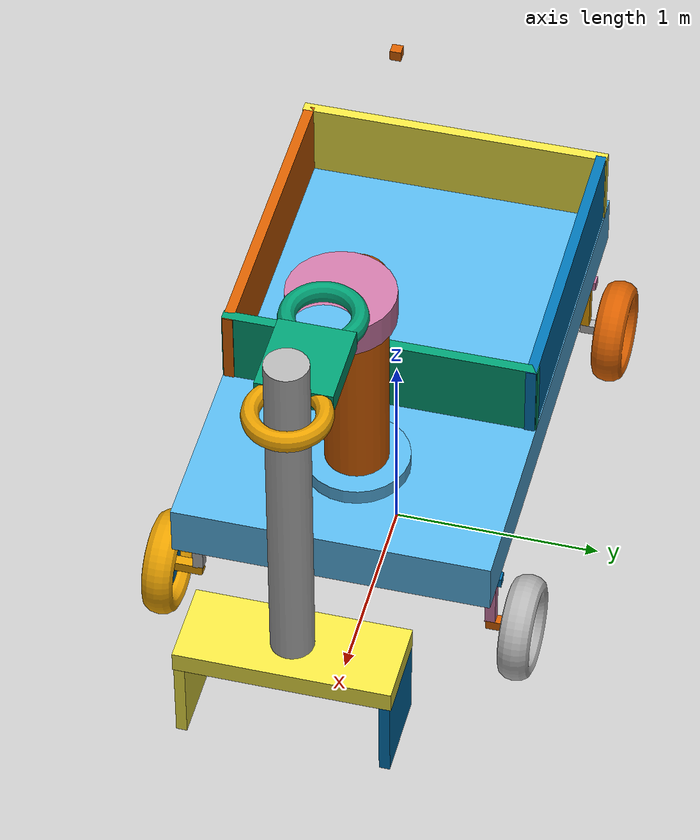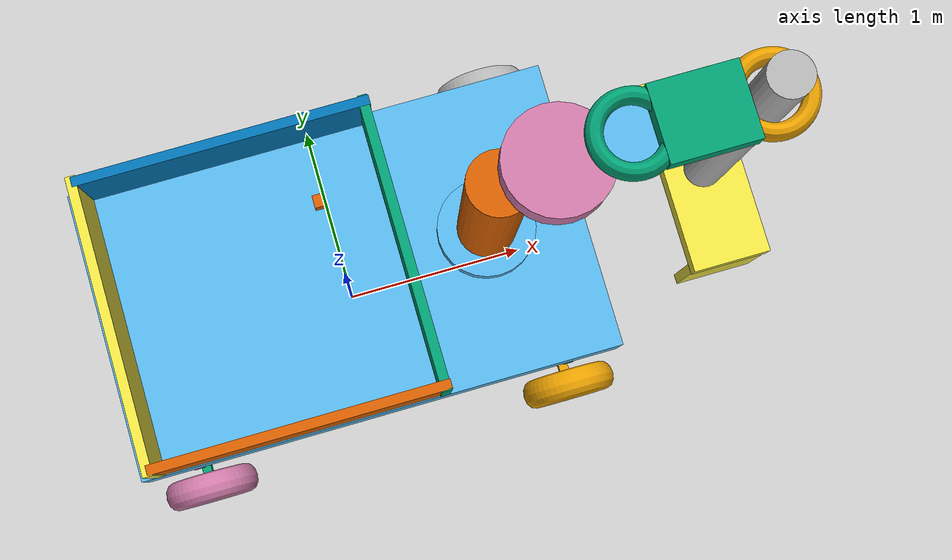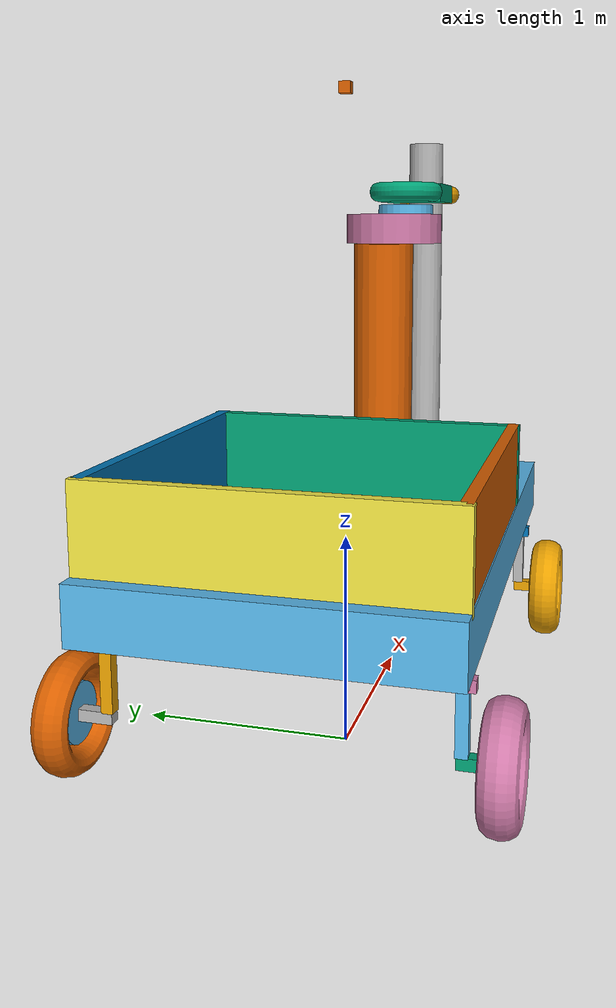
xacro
<?xml version="1.0"?>

<robot name="rover_description" xmlns:xacro="http:/wiki:ros.org/xacro">

  <!-- Includes -->
  <xacro:include filename="$(find rover_description)/urdf/base/robot_base.urdf.xacro"/>
  <xacro:include filename="$(find rover_description)/urdf/wheels/wheels.urdf.xacro"/>
  <xacro:include filename="$(find rover_description)/urdf/arm/arm.urdf.xacro"/>
  <xacro:include filename="$(find rover_description)/urdf/sensors/camera.urdf.xacro"/>
  <xacro:include filename="$(find rover_description)/urdf/sensors/imu_sensor.urdf.xacro"/>
  <!-- Properties -->
  <xacro:property name="PI" value="3.1415926535897931"/>
  <xacro:property name="wheel_offset_x" value="0.95"/>
  <xacro:property name="wheel_offset_y" value="0.95"/>
  <xacro:property name="wheel_offset_z" value="-0.38"/>
  <xacro:property name="arm_offset_x" value="0.0"/>
  <xacro:property name="arm_offset_y" value="0.82"/>
  <xacro:property name="arm_offset_z" value="0.69"/>

  <!-- Arguments -->
  <xacro:arg name="robot_ns" default=""/>
  <xacro:arg name="prefix" default=""/>

  <!-- Robot Parts -->

  <!-- Base -->

    <!-- base -->
    <xacro:robot_base/>

    <!-- wheels -->
    <xacro:wheels parent="base_link"/>

    <!-- arm -->
    <xacro:arm parent="base_link"/>

    <!-- sensors -->
    <xacro:camera parent="base_link"/>
    <xacro:sensor_imu parent="base_link"/>

    <!-- gazebo ROS control plugins -->
    <xacro:include filename="$(find rover_description)/urdf/ros2_control.urdf.xacro"/>
    <xacro:arg name="config_controllers" default="$(find rover_description)/config/rover_controllers.yaml"/>
    <xacro:arg name="update_rate" default="20"/>
    <xacro:ros2_control/>

</robot>

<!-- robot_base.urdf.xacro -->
<robot name="rover_description" xmlns:xacro="http:/wiki:ros.org/xacro">
  <xacro:macro name="robot_base">

   <link name="base_footprint">
    <visual name="Cube.000.001.002">
      <origin xyz="0 0 0" rpy="0 0 0" />
      <geometry>
        <sphere radius="0.001" />
      </geometry>
    </visual>
    <collision name="Cube.000.001.002.000">
      <origin xyz="0 0 0" rpy="0 0 0" />
      <geometry>
        <sphere radius="0.001" />
      </geometry>
    </collision>
   </link>
   <link name="base_link">
    <collision name="robot_base_collision">
      <origin rpy="0.00000 0.00000 0.00000" xyz="0.00000 0.00000 0.00000"/>
      <geometry>
        <box size="1.50000 2.50000 0.25000"/>
      </geometry>
    </collision>
    <inertial>
      <inertia ixx="3.15625" ixy="0.00000" ixz="0.00000" iyy="1.15625" iyz="0.00000" izz="4.25000"/>
      <origin rpy="0.00000 0.00000 0.00000" xyz="0.00000 0.00000 0.00000"/>
      <mass value="6.00000"/>
    </inertial>
    <visual name="robot_base">
      <origin rpy="0.00000 0.00000 0.00000" xyz="0.00000 0.00000 0.00000"/>
      <geometry>
        <box size="1.50000 2.50000 0.25000"/>
      </geometry>
    </visual>
  </link>
  <link name="truck_front_link">
    <collision name="truck_front_collision">
      <origin rpy="3.14159 0.00000 3.14159" xyz="0.00000 0.00000 0.00000"/>
      <geometry>
        <box size="1.50000 0.05000 0.40000"/>
      </geometry>
    </collision>
    <inertial>
      <inertia ixx="0.01354" ixy="0.00000" ixz="-0.00000" iyy="0.20083" iyz="0.00000" izz="0.18771"/>
      <origin rpy="0.00000 0.00000 0.00000" xyz="0.00000 0.00000 0.00000"/>
      <mass value="1.00000"/>
    </inertial>
    <visual name="truck_front">
      <origin rpy="3.14159 0.00000 3.14159" xyz="0.00000 0.00000 0.00000"/>
      <geometry>
        <box size="1.50000 0.05000 0.40000"/>
      </geometry>
    </visual>
  </link>
  <link name="trunk_back_link">
    <collision name="trunk_back_collision">
      <origin rpy="3.14159 0.00000 3.14159" xyz="0.00000 0.00000 0.00000"/>
      <geometry>
        <box size="1.50000 0.05000 0.40000"/>
      </geometry>
    </collision>
    <inertial>
      <inertia ixx="0.01354" ixy="0.00000" ixz="-0.00000" iyy="0.20083" iyz="0.00000" izz="0.18771"/>
      <origin rpy="0.00000 0.00000 0.00000" xyz="0.00000 0.00000 0.00000"/>
      <mass value="1.00000"/>
    </inertial>
    <visual name="trunk_back">
      <origin rpy="3.14159 0.00000 3.14159" xyz="0.00000 0.00000 0.00000"/>
      <geometry>
        <box size="1.50000 0.05000 0.40000"/>
      </geometry>
    </visual>
  </link>
  <link name="trunk_left_link">
    <collision name="trunk_left_collision">
      <origin rpy="3.14159 0.00000 3.14159" xyz="-0.00000 0.00000 0.00000"/>
      <geometry>
        <box size="0.05000 1.50000 0.40000"/>
      </geometry>
    </collision>
    <inertial>
      <inertia ixx="0.20083" ixy="0.00000" ixz="0.00000" iyy="0.01354" iyz="0.00000" izz="0.18771"/>
      <origin rpy="0.00000 0.00000 0.00000" xyz="0.00000 0.00000 0.00000"/>
      <mass value="1.00000"/>
    </inertial>
    <visual name="trunk_left">
      <origin rpy="3.14159 0.00000 3.14159" xyz="-0.00000 0.00000 0.00000"/>
      <geometry>
        <box size="0.05000 1.50000 0.40000"/>
      </geometry>
    </visual>
  </link>
  <link name="trunk_right_link">
    <collision name="trunk_right_collision">
      <origin rpy="3.14159 0.00000 3.14159" xyz="0.00000 0.00000 0.00000"/>
      <geometry>
        <box size="0.05000 1.50000 0.40000"/>
      </geometry>
    </collision>
    <inertial>
      <inertia ixx="0.20083" ixy="0.00000" ixz="0.00000" iyy="0.01354" iyz="0.00000" izz="0.18771"/>
      <origin rpy="0.00000 0.00000 0.00000" xyz="0.00000 0.00000 -0.00000"/>
      <mass value="1.00000"/>
    </inertial>
    <visual name="trunk_right">
      <origin rpy="3.14159 0.00000 3.14159" xyz="0.00000 0.00000 0.00000"/>
      <geometry>
        <box size="0.05000 1.50000 0.40000"/>
      </geometry>
    </visual>
  </link>
  <joint name="base_footprint_joint" type="fixed">
    <origin rpy="0.00000 0.00000 1.570795" xyz="0.00000 0.00000 1.00000"/>
    <parent link="base_footprint"/>
    <child link="base_link"/>
  </joint>
  <joint name="joint_back_truck_2_base" type="fixed">
    <origin rpy="3.14159 -0.00000 3.14159" xyz="0.00000 1.15000 0.30000"/>
    <parent link="base_link"/>
    <child link="trunk_back_link"/>
  </joint>
  <joint name="joint_front_truck_2_base" type="fixed">
    <origin rpy="3.14159 -0.00000 3.14159" xyz="0.00000 -0.32000 0.30000"/>
    <parent link="base_link"/>
    <child link="truck_front_link"/>
  </joint>
  <joint name="joint_left_truck_2_base" type="fixed">
    <origin rpy="3.14159 -0.00000 3.14159" xyz="0.72000 0.40000 0.30000"/>
    <parent link="base_link"/>
    <child link="trunk_left_link"/>
  </joint>
  <joint name="joint_right_truck_2_base" type="fixed">
    <origin rpy="3.14159 -0.00000 3.14159" xyz="-0.72000 0.40000 0.30000"/>
    <parent link="base_link"/>
    <child link="trunk_right_link"/>
  </joint>
  </xacro:macro>
</robot>

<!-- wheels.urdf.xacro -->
<robot name="rover_description" xmlns:xacro="http:/wiki:ros.org/xacro">
  <xacro:macro name="wheels" params="parent">
  <joint name="back_linkage_axis_left_link_joint" type="fixed">
    <origin rpy="0.00000 -1.57080 0.00000" xyz="0.70000 0.00000 -0.13000"/>
    <parent link="back_axis_link"/>
    <child link="back_linkage_axis_left_link"/>
  </joint>
  <joint name="back_linkage_axis_right_link_joint" type="fixed">
    <origin rpy="-0.00000 1.57080 0.00000" xyz="-0.70000 0.00000 -0.13000"/>
    <parent link="back_axis_link"/>
    <child link="back_linkage_axis_right_link"/>
  </joint>

  <joint name="joint_back_right_2_linkage_axis" type="fixed">
    <origin rpy="0.00000 -1.57080 0.00000" xyz="0.17000 0.00000 -0.08000"/>
    <parent link="back_linkage_axis_right_link"/>
    <child link="back_right_axis_link"/>
  </joint>

  <joint name="joint_central_2_back_axis" type="fixed">
    <origin rpy="0.00000 0.00000 0.00000" xyz="0.00000 1.00000 -0.05000"/>
    <parent link="central_axis_link"/>
    <child link="back_axis_link"/>
  </joint>
  <joint name="joint_central_2_front_axis" type="fixed">
    <origin rpy="0.00000 0.00000 0.00000" xyz="0.00000 -1.00000 -0.05000"/>
    <parent link="central_axis_link"/>
    <child link="front_axis_link"/>
  </joint>
  <joint name="joint_centralaxis_2_base" type="fixed">
    <origin rpy="0.00000 0.00000 0.00000" xyz="0.00000 0.00000 -0.15000"/>
    <parent link="${parent}"/>
    <child link="central_axis_link"/>
  </joint>
  <joint name="joint_front_right_axis_2_linkage" type="fixed">
    <origin rpy="0.00000 -1.57080 0.00000" xyz="0.17000 0.00000 -0.08000"/>
    <parent link="front_linkage_axis_right_link"/>
    <child link="front_right_axis_link"/>
  </joint>

  <joint name="joint_left_2_linkage_axis" type="fixed">
    <origin rpy="-0.00000 1.57080 0.00000" xyz="-0.17000 0.00000 -0.08000"/>
    <parent link="back_linkage_axis_left_link"/>
    <child link="back_left_axis_link"/>
  </joint>
  <joint name="joint_left_axis_2_linkage_front" type="fixed">
    <origin rpy="-0.00000 1.57080 0.00000" xyz="-0.17000 0.00000 -0.08000"/>
    <parent link="front_linkage_axis_left_link"/>
    <child link="front_left_axis_link"/>
  </joint>

  <joint name="joint_linkage_2_front__right_axis" type="fixed">
    <origin rpy="-0.00000 1.57080 0.00000" xyz="-0.70000 0.00000 -0.13000"/>
    <parent link="front_axis_link"/>
    <child link="front_linkage_axis_right_link"/>
  </joint>
  <joint name="joint_linkage_2_front_axis_left" type="fixed">
    <origin rpy="0.00000 -1.57080 0.00000" xyz="0.70000 0.00000 -0.13000"/>
    <parent link="front_axis_link"/>
    <child link="front_linkage_axis_left_link"/>
  </joint>

  <joint name="joint_wheel_2_rim_back_left" type="fixed">
    <origin rpy="3.14159 1.57080 3.14159" xyz="-0.00000 0.00000 0.00000"/>
    <parent link="rim_back_left_link"/>
    <child link="wheel_back_left_link"/>
  </joint>
  <joint name="joint_wheel_2_rim_back_right" type="fixed">
    <origin rpy="0.00000 -1.57080 0.00000" xyz="0.00000 0.00000 0.00000"/>
    <parent link="rim_back_right_link"/>
    <child link="wheel_back_right_link"/>
  </joint>
  <joint name="joint_wheel_2_rim_fornt_left" type="fixed">
    <origin rpy="3.14159 1.57080 3.14159" xyz="0.00000 0.00000 -0.00000"/>
    <parent link="rim_front_left_link"/>
    <child link="wheel_front_left_link"/>
  </joint>
  <joint name="joint_wheel_2_rim_front_right" type="fixed">
    <origin rpy="0.00000 -1.57080 0.00000" xyz="0.00000 0.00000 0.00000"/>
    <parent link="rim_front_right_link"/>
    <child link="wheel_front_right_link"/>
  </joint>
  <joint name="joint_wheel_back_left" type="continuous">
    <limit lower="0" upper="0" effort="0.00000" velocity="0.00000"/>
    <origin rpy="-0.00000 1.57080 0.00000" xyz="0.07000 0.00000 -0.00000"/>
    <parent link="back_left_axis_link"/>
    <child link="rim_back_left_link"/>
    <axis xyz="0.00000 0.00000 1.00000"/>
  </joint>
  <joint name="joint_wheel_banck_right" type="continuous">
    <limit lower="0" upper="0" effort="0.00000" velocity="0.00000"/>
    <origin rpy="0.00000 -1.57080 0.00000" xyz="-0.07000 0.00000 -0.00000"/>
    <parent link="back_right_axis_link"/>
    <child link="rim_back_right_link"/>
    <axis xyz="0.00000 0.00000 1.00000"/>
  </joint>
  <joint name="joint_wheel_front_left" type="continuous">
    <limit lower="0" upper="0" effort="0.00000" velocity="0.00000"/>
    <origin rpy="-0.00000 1.57080 0.00000" xyz="0.07000 0.00000 0.00000"/>
    <parent link="front_left_axis_link"/>
    <child link="rim_front_left_link"/>
    <axis xyz="0.00000 0.00000 1.00000"/>
  </joint>
  <joint name="joint_wheel_front_right" type="continuous">
    <limit lower="0" upper="0" effort="0.00000" velocity="0.00000"/>
    <origin rpy="0.00000 -1.57080 0.00000" xyz="-0.07000 0.00000 -0.00000"/>
    <parent link="front_right_axis_link"/>
    <child link="rim_front_right_link"/>
    <axis xyz="0.00000 0.00000 1.00000"/>
  </joint>

  <link name="back_axis_link">
    <collision name="back_axis_collision">
      <origin rpy="0.00000 0.00000 0.00000" xyz="0.00000 0.00000 0.00000"/>
      <geometry>
        <box size="1.50000 0.05000 0.05000"/>
      </geometry>
    </collision>
    <inertial>
      <inertia ixx="0.00033" ixy="0.00000" ixz="0.00000" iyy="0.15017" iyz="0.00000" izz="0.15017"/>
      <origin rpy="0.00000 0.00000 0.00000" xyz="0.00000 0.00000 0.00000"/>
      <mass value="0.80000"/>
    </inertial>
    <visual name="back_axis">
      <origin rpy="0.00000 0.00000 0.00000" xyz="0.00000 0.00000 0.00000"/>
      <geometry>
        <box size="1.50000 0.05000 0.05000"/>
      </geometry>
    </visual>
  </link>
  <link name="back_left_axis_link">
    <collision name="back_left_axis_collision">
      <origin rpy="0.00000 0.00000 0.00000" xyz="0.00000 0.00000 -0.00000"/>
      <geometry>
        <box size="0.20000 0.05000 0.05000"/>
      </geometry>
    </collision>
    <inertial>
      <inertia ixx="0.00021" ixy="0.00000" ixz="0.00000" iyy="0.00177" iyz="0.00000" izz="0.00177"/>
      <origin rpy="0.00000 0.00000 0.00000" xyz="0.00000 0.00000 -0.00000"/>
      <mass value="0.50000"/>
    </inertial>
    <visual name="back_left_axis">
      <origin rpy="0.00000 0.00000 0.00000" xyz="0.00000 0.00000 -0.00000"/>
      <geometry>
        <box size="0.20000 0.05000 0.05000"/>
      </geometry>
    </visual>
  </link>
  <link name="back_linkage_axis_left_link">
    <collision name="back_linkage_axis_left_collision">
      <origin rpy="-0.00000 1.57080 0.00000" xyz="0.00000 0.00000 -0.00000"/>
      <geometry>
        <box size="0.05000 0.05000 0.30000"/>
      </geometry>
    </collision>
    <inertial>
      <inertia ixx="0.00385" ixy="0.00000" ixz="0.00000" iyy="0.00385" iyz="0.00000" izz="0.00021"/>
      <origin rpy="0.00000 0.00000 0.00000" xyz="0.00000 0.00000 -0.00000"/>
      <mass value="0.50000"/>
    </inertial>
    <visual name="back_linkage_axis_left">
      <origin rpy="-0.00000 1.57080 0.00000" xyz="0.00000 0.00000 0.00000"/>
      <geometry>
        <box size="0.05000 0.05000 0.30000"/>
      </geometry>
    </visual>
  </link>
  <link name="back_linkage_axis_right_link">
    <collision name="back_linkage_axis_right_collision">
      <origin rpy="0.00000 -1.57080 0.00000" xyz="-0.00000 0.00000 -0.00000"/>
      <geometry>
        <box size="0.05000 0.05000 0.30000"/>
      </geometry>
    </collision>
    <inertial>
      <inertia ixx="0.00385" ixy="0.00000" ixz="-0.00000" iyy="0.00385" iyz="0.00000" izz="0.00021"/>
      <origin rpy="0.00000 0.00000 0.00000" xyz="-0.00000 0.00000 -0.00000"/>
      <mass value="0.50000"/>
    </inertial>
    <visual name="back_linkage_axis_right">
      <origin rpy="0.00000 -1.57080 0.00000" xyz="0.00000 0.00000 0.00000"/>
      <geometry>
        <box size="0.05000 0.05000 0.30000"/>
      </geometry>
    </visual>
  </link>
  <link name="back_right_axis_link">
    <collision name="back_right_axis_collision">
      <origin rpy="0.00000 0.00000 0.00000" xyz="-0.00000 0.00000 -0.00000"/>
      <geometry>
        <box size="0.20000 0.05000 0.05000"/>
      </geometry>
    </collision>
    <inertial>
      <inertia ixx="0.00021" ixy="0.00000" ixz="0.00000" iyy="0.00177" iyz="0.00000" izz="0.00177"/>
      <origin rpy="0.00000 0.00000 0.00000" xyz="-0.00000 0.00000 -0.00000"/>
      <mass value="0.50000"/>
    </inertial>
    <visual name="back_right_axis">
      <origin rpy="0.00000 0.00000 0.00000" xyz="0.00000 0.00000 -0.00000"/>
      <geometry>
        <box size="0.20000 0.05000 0.05000"/>
      </geometry>
    </visual>
  </link>
  <link name="central_axis_link">
    <collision name="central_axis_collision">
      <origin rpy="0.00000 0.00000 0.00000" xyz="0.00000 0.00000 0.00000"/>
      <geometry>
        <box size="0.10000 2.05000 0.10000"/>
      </geometry>
    </collision>
    <inertial>
      <inertia ixx="0.35104" ixy="0.00000" ixz="0.00000" iyy="0.00167" iyz="0.00000" izz="0.35104"/>
      <origin rpy="0.00000 0.00000 0.00000" xyz="0.00000 0.00000 0.00000"/>
      <mass value="1.00000"/>
    </inertial>
    <visual name="central_axis">
      <origin rpy="0.00000 0.00000 0.00000" xyz="0.00000 0.00000 0.00000"/>
      <geometry>
        <box size="0.10000 2.05000 0.10000"/>
      </geometry>
    </visual>
  </link>

  <link name="front_axis_link">
    <collision name="front_axis_collision">
      <origin rpy="0.00000 0.00000 0.00000" xyz="0.00000 0.00000 0.00000"/>
      <geometry>
        <box size="1.50000 0.05000 0.05000"/>
      </geometry>
    </collision>
    <inertial>
      <inertia ixx="0.00033" ixy="0.00000" ixz="0.00000" iyy="0.15017" iyz="0.00000" izz="0.15017"/>
      <origin rpy="0.00000 0.00000 0.00000" xyz="0.00000 0.00000 0.00000"/>
      <mass value="0.80000"/>
    </inertial>
    <visual name="front_axis">
      <origin rpy="0.00000 0.00000 0.00000" xyz="0.00000 0.00000 0.00000"/>
      <geometry>
        <box size="1.50000 0.05000 0.05000"/>
      </geometry>
    </visual>
  </link>
  <link name="front_left_axis_link">
    <collision name="front_left_axis_collision">
      <origin rpy="0.00000 0.00000 0.00000" xyz="0.00000 0.00000 0.00000"/>
      <geometry>
        <box size="0.20000 0.05000 0.05000"/>
      </geometry>
    </collision>
    <inertial>
      <inertia ixx="0.00021" ixy="0.00000" ixz="0.00000" iyy="0.00177" iyz="0.00000" izz="0.00177"/>
      <origin rpy="0.00000 0.00000 0.00000" xyz="-0.00000 0.00000 0.00000"/>
      <mass value="0.50000"/>
    </inertial>
    <visual name="front_left_axis">
      <origin rpy="0.00000 0.00000 0.00000" xyz="0.00000 0.00000 0.00000"/>
      <geometry>
        <box size="0.20000 0.05000 0.05000"/>
      </geometry>
    </visual>
  </link>
  <link name="front_linkage_axis_left_link">
    <collision name="front_linkage_axis_left_collision">
      <origin rpy="-0.00000 1.57080 0.00000" xyz="-0.00000 0.00000 0.00000"/>
      <geometry>
        <box size="0.05000 0.05000 0.30000"/>
      </geometry>
    </collision>
    <inertial>
      <inertia ixx="0.00385" ixy="0.00000" ixz="0.00000" iyy="0.00385" iyz="0.00000" izz="0.00021"/>
      <origin rpy="0.00000 0.00000 0.00000" xyz="-0.00000 0.00000 0.00000"/>
      <mass value="0.50000"/>
    </inertial>
    <visual name="front_linkage_axis_left">
      <origin rpy="-0.00000 1.57080 0.00000" xyz="-0.00000 0.00000 0.00000"/>
      <geometry>
        <box size="0.05000 0.05000 0.30000"/>
      </geometry>
    </visual>
  </link>
  <link name="front_linkage_axis_right_link">
    <collision name="front_linkage_axis_right_collision">
      <origin rpy="0.00000 -1.57080 0.00000" xyz="-0.00000 0.00000 -0.00000"/>
      <geometry>
        <box size="0.05000 0.05000 0.30000"/>
      </geometry>
    </collision>
    <inertial>
      <inertia ixx="0.00385" ixy="0.00000" ixz="-0.00000" iyy="0.00385" iyz="0.00000" izz="0.00021"/>
      <origin rpy="0.00000 0.00000 0.00000" xyz="-0.00000 0.00000 -0.00000"/>
      <mass value="0.50000"/>
    </inertial>
    <visual name="front_linkage_axis_right">
      <origin rpy="0.00000 -1.57080 0.00000" xyz="0.00000 0.00000 0.00000"/>
      <geometry>
        <box size="0.05000 0.05000 0.30000"/>
      </geometry>
    </visual>
  </link>
  <link name="front_right_axis_link">
    <collision name="front_right_axis_collision">
      <origin rpy="0.00000 0.00000 0.00000" xyz="-0.00000 0.00000 -0.00000"/>
      <geometry>
        <box size="0.20000 0.05000 0.05000"/>
      </geometry>
    </collision>
    <inertial>
      <inertia ixx="0.00021" ixy="0.00000" ixz="0.00000" iyy="0.00177" iyz="0.00000" izz="0.00177"/>
      <origin rpy="0.00000 0.00000 0.00000" xyz="-0.00000 0.00000 -0.00000"/>
      <mass value="0.50000"/>
    </inertial>
    <visual name="front_right_axis">
      <origin rpy="0.00000 0.00000 0.00000" xyz="0.00000 0.00000 -0.00000"/>
      <geometry>
        <box size="0.20000 0.05000 0.05000"/>
      </geometry>
    </visual>
  </link>

  <link name="rim_back_left_link">
    <collision name="rim_back_left_collision">
      <origin rpy="0.00000 0.00000 0.00000" xyz="0.00000 0.00000 0.00000"/>
      <geometry>
        <cylinder radius="0.12500" length="0.05000"/>
      </geometry>
    </collision>
    <inertial>
      <inertia ixx="0.00781" ixy="0.00000" ixz="-0.00000" iyy="0.00411" iyz="0.00000" izz="0.00411"/>
      <origin rpy="0.00000 0.00000 0.00000" xyz="0.00000 0.00000 0.00000"/>
      <mass value="1.00000"/>
    </inertial>
    <visual name="rim_back_left">
      <origin rpy="0.00000 0.00000 0.00000" xyz="-0.00000 0.00000 0.00000"/>
      <geometry>
        <cylinder radius="0.12500" length="0.05000"/>
      </geometry>
    </visual>
  </link>
  <link name="rim_back_right_link">
    <collision name="rim_back_right_collision">
      <origin rpy="3.14159 -0.00000 3.14159" xyz="0.00000 0.00000 0.00000"/>
      <geometry>
        <cylinder radius="0.12500" length="0.05000"/>
      </geometry>
    </collision>
    <inertial>
      <inertia ixx="0.01125" ixy="0.00000" ixz="0.00000" iyy="0.00583" iyz="0.00000" izz="0.00583"/>
      <origin rpy="0.00000 0.00000 0.00000" xyz="0.00000 0.00000 0.00000"/>
      <mass value="1.00000"/>
    </inertial>
    <visual name="rim_back_right">
      <origin rpy="3.14159 0.00000 3.14159" xyz="0.00000 0.00000 0.00000"/>
      <geometry>
        <cylinder radius="0.15000" length="0.05000"/>
      </geometry>
    </visual>
  </link>
  <link name="rim_front_left_link">
    <collision name="rim_front_left_collision">
      <origin rpy="0.00000 0.00000 0.00000" xyz="0.00000 0.00000 -0.00000"/>
      <geometry>
        <cylinder radius="0.12500" length="0.05000"/>
      </geometry>
    </collision>
    <inertial>
      <inertia ixx="0.00781" ixy="0.00000" ixz="-0.00000" iyy="0.00411" iyz="0.00000" izz="0.00411"/>
      <origin rpy="0.00000 0.00000 0.00000" xyz="0.00000 0.00000 0.00000"/>
      <mass value="1.00000"/>
    </inertial>
    <visual name="rim_front_left">
      <origin rpy="0.00000 0.00000 0.00000" xyz="0.00000 0.00000 -0.00000"/>
      <geometry>
        <cylinder radius="0.12500" length="0.05000"/>
      </geometry>
    </visual>
  </link>
  <link name="rim_front_right_link">
    <collision name="rim_front_right_collision">
      <origin rpy="3.14159 -0.00000 3.14159" xyz="0.00000 0.00000 0.00000"/>
      <geometry>
        <cylinder radius="0.12500" length="0.05000"/>
      </geometry>
    </collision>
    <inertial>
      <inertia ixx="0.00781" ixy="0.00000" ixz="0.00000" iyy="0.00411" iyz="0.00000" izz="0.00411"/>
      <origin rpy="0.00000 0.00000 0.00000" xyz="0.00000 0.00000 0.00000"/>
      <mass value="1.00000"/>
    </inertial>
    <visual name="rim_front_right">
      <origin rpy="3.14159 0.00000 3.14159" xyz="0.00000 0.00000 0.00000"/>
      <geometry>
        <cylinder radius="0.12500" length="0.05000"/>
      </geometry>
    </visual>
  </link>

  <link name="wheel_back_left_link">
    <collision name="wheel_back_left_collision">
      <origin rpy="0.00000 1.57080 -0.00000" xyz="0.00000 0.00000 0.00000"/>
      <geometry>
        <mesh filename="file://$(find rover_description)/meshes/dae/Torus.003.dae" scale="0.20000 0.20000 0.30000"/>
      </geometry>
    </collision>
    <inertial>
      <inertia ixx="0.02932" ixy="0.00000" ixz="0.00000" iyy="0.01577" iyz="-0.00000" izz="0.01577"/>
      <origin rpy="0.00000 0.00000 0.00000" xyz="0.00000 -0.00000 0.00000"/>
      <mass value="1.00000"/>
    </inertial>
    <visual name="wheel_back_left">
      <origin rpy="3.14159 -1.57080 3.14159" xyz="0.00000 0.00000 0.00000"/>
      <geometry>
        <mesh filename="file://$(find rover_description)/meshes/dae/Torus.003.dae" scale="0.20000 0.20000 0.30000"/>
      </geometry>
    </visual>
  </link>
  <link name="wheel_back_right_link">
    <collision name="wheel_back_right_collision">
      <origin rpy="0.00000 1.57080 -0.00000" xyz="-0.00000 0.00000 -0.00000"/>
      <geometry>
        <mesh filename="file://$(find rover_description)/meshes/dae/Torus.001.dae" scale="0.20000 0.20000 0.30000"/>
      </geometry>
    </collision>
    <inertial>
      <inertia ixx="0.02932" ixy="0.00000" ixz="0.00000" iyy="0.01577" iyz="-0.00000" izz="0.01577"/>
      <origin rpy="0.00000 0.00000 0.00000" xyz="-0.00000 -0.00000 0.00000"/>
      <mass value="1.00000"/>
    </inertial>
    <visual name="wheel_back_right">
      <origin rpy="3.14159 -1.57080 3.14159" xyz="-0.00000 0.00000 -0.00000"/>
      <geometry>
        <mesh filename="file://$(find rover_description)/meshes/dae/Torus.001.dae" scale="0.20000 0.20000 0.30000"/>
      </geometry>
    </visual>
  </link>
  <link name="wheel_front_left_link">
    <collision name="wheel_front_left_collision">
      <origin rpy="0.00000 1.57080 -0.00000" xyz="-0.00000 0.00000 -0.00000"/>
      <geometry>
        <mesh filename="file://$(find rover_description)/meshes/dae/Torus.002.dae" scale="0.20000 0.20000 0.30000"/>
      </geometry>
    </collision>
    <inertial>
      <inertia ixx="0.02932" ixy="0.00000" ixz="0.00000" iyy="0.01577" iyz="-0.00000" izz="0.01577"/>
      <origin rpy="0.00000 0.00000 0.00000" xyz="-0.00000 0.00000 -0.00000"/>
      <mass value="1.00000"/>
    </inertial>
    <visual name="wheel_front_left">
      <origin rpy="3.14159 -1.57080 3.14159" xyz="-0.00000 0.00000 -0.00000"/>
      <geometry>
        <mesh filename="file://$(find rover_description)/meshes/dae/Torus.002.dae" scale="0.20000 0.20000 0.30000"/>
      </geometry>
    </visual>
  </link>
  <link name="wheel_front_right_link">
    <collision name="wheel_front_right_collision">
      <origin rpy="0.00000 1.57080 -0.00000" xyz="-0.00000 0.00000 -0.00000"/>
      <geometry>
        <mesh filename="file://$(find rover_description)/meshes/dae/Torus.dae" scale="0.20000 0.20000 0.30000"/>
      </geometry>
    </collision>
    <inertial>
      <inertia ixx="0.02932" ixy="0.00000" ixz="0.00000" iyy="0.01577" iyz="-0.00000" izz="0.01577"/>
      <origin rpy="0.00000 0.00000 0.00000" xyz="-0.00000 0.00000 0.00000"/>
      <mass value="1.00000"/>
    </inertial>
    <visual name="wheel_front_right">
      <origin rpy="3.14159 -1.57080 3.14159" xyz="-0.00000 0.00000 -0.00000"/>
      <geometry>
        <mesh filename="file://$(find rover_description)/meshes/dae/Torus.dae" scale="0.20000 0.20000 0.30000"/>
      </geometry>
    </visual>
  </link>
  </xacro:macro>

</robot>

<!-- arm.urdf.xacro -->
<robot name="rover_description" xmlns:xacro="http:/wiki:ros.org/xacro">
  <xacro:macro name="arm" params="parent">
  <joint name="arm_base_link_joint" type="fixed">
    <origin rpy="0.00000 0.00000 0.00000" xyz="0.00000 -0.75000 0.15000"/>
    <parent link="${parent}"/>
    <child link="arm_base_link"/>
  </joint>

  <joint name="central_link3_link_joint" type="fixed">
    <origin rpy="0.00000 0.00000 0.00000" xyz="0.00000 -0.30000 0.00000"/>
    <parent link="linkage_link3_link"/>
    <child link="central_link3_link"/>
  </joint>
  <joint name="joint_1_arm" type="continuous">
    <limit lower="0" upper="0" effort="0.00000" velocity="0.00000"/>
    <origin rpy="0.00000 0.00000 0.00000" xyz="0.00000 0.00000 0.55000"/>
    <parent link="link1_arm_link"/>
    <child link="link2_arm.001_link"/>
    <axis xyz="0.00000 0.00000 1.00000"/>
  </joint>
  <joint name="joint_arm_2" type="continuous">
    <limit lower="0" upper="0" effort="0.00000" velocity="0.00000"/>
    <origin rpy="0.00000 0.00000 0.00000" xyz="0.00000 0.00000 0.10000"/>
    <parent link="linkage_arm2_arm3_link"/>
    <child link="linkage_link3_link"/>
    <axis xyz="0.00000 0.00000 1.00000"/>
  </joint>
  <joint name="joint_linkage_2_link2" type="fixed">
    <origin rpy="0.00000 0.00000 0.00000" xyz="0.00000 -0.55000 0.10000"/>
    <parent link="link2_arm.001_link"/>
    <child link="linkage_arm2_arm3_link"/>
  </joint>
  <joint name="joint_arm_4_prismatic" type="prismatic">
    <limit lower="-3.14000" upper="3.14000" effort="0.00000" velocity="0.00000"/>
    <origin rpy="0.00000 0.00000 0.00000" xyz="0.00000 0.00000 -0.60000"/>
    <parent link="link3_final_link"/>
    <child link="link3_arm_link"/>
    <axis xyz="0.00000 0.00000 1.00000"/>
  </joint>

   <joint name="joint_gripper_left" type="prismatic">
    <limit lower="-3.14000" upper="3.14000" effort="0.00000" velocity="0.00000"/>
    <origin rpy="0.00000 1.57080 0.00000" xyz="-0.47000 0.00000 0.25000"/>
    <parent link="gripper_base_link"/>
    <child link="left_gripper_link"/>
    <axis xyz="0.00000 0.00000 1.00000"/>
  </joint>
  <joint name="joint_gripper_right" type="prismatic">
    <limit lower="-3.14000" upper="3.14000" effort="0.00000" velocity="0.00000"/>
    <origin rpy="0.00000 -1.57080 0.00000" xyz="0.47000 0.00000 0.25000"/>
    <parent link="gripper_base_link"/>
    <child link="right_gripper_link"/>
    <axis xyz="0.00000 0.00000 1.00000"/>
  </joint>
  <joint name="joint_gripper_rotacion" type="continuous">
    <limit lower="0" upper="0" effort="0.00000" velocity="0.00000"/>
    <origin rpy="3.14159 -0.00000 3.14159" xyz="0.00000 -0.00000 -0.90000"/>
    <parent link="link3_arm_link"/>
    <child link="gripper_base_link"/>
    <axis xyz="0.00000 0.00000 1.00000"/>
  </joint>
  <joint name="joint_link_1_2_base_arm" type="fixed">
    <origin rpy="0.00000 0.00000 0.00000" xyz="0.00000 0.00000 0.70000"/>
    <parent link="arm_base_link"/>
    <child link="link1_arm_link"/>
  </joint>

  <joint name="link3_final_link_joint" type="fixed">
    <origin rpy="0.00000 0.00000 0.00000" xyz="0.00000 -0.30000 -0.00000"/>
    <parent link="central_link3_link"/>
    <child link="link3_final_link"/>
  </joint>
  <link name="arm_base_link">
    <collision name="arm_base_collision">
      <origin rpy="0.00000 0.00000 0.00000" xyz="0.00000 -0.00000 0.00000"/>
      <geometry>
        <cylinder radius="0.25000" length="0.10000"/>
      </geometry>
    </collision>
    <inertial>
      <inertia ixx="0.02469" ixy="0.00000" ixz="0.00000" iyy="0.02469" iyz="0.00000" izz="0.04688"/>
      <origin rpy="0.00000 0.00000 0.00000" xyz="0.00000 -0.00000 0.00000"/>
      <mass value="1.50000"/>
    </inertial>
    <visual name="arm_base">
      <origin rpy="0.00000 0.00000 0.00000" xyz="0.00000 0.00000 0.00000"/>
      <geometry>
        <cylinder radius="0.25000" length="0.10000"/>
      </geometry>
    </visual>
  </link>

  <link name="central_link3_link">
    <collision name="central_link3_collision">
      <origin rpy="0.00000 0.00000 0.00000" xyz="0.00000 -0.00000 -0.00000"/>
      <geometry>
        <box size="0.20000 0.20000 0.10000"/>
      </geometry>
    </collision>
    <inertial>
      <inertia ixx="0.00425" ixy="0.00000" ixz="0.00000" iyy="0.00331" iyz="0.00000" izz="0.00706"/>
      <origin rpy="0.00000 0.00000 0.00000" xyz="0.00000 -0.00000 -0.00000"/>
      <mass value="0.30000"/>
    </inertial>
    <visual name="central_link3">
      <origin rpy="0.00000 0.00000 0.00000" xyz="0.00000 0.00000 -0.00000"/>
      <geometry>
        <box size="0.35000 0.40000 0.10000"/>
      </geometry>
    </visual>
  </link>

  <link name="gripper_base_link">
    <collision name="gripper_base_collision">
      <origin rpy="3.14159 0.00000 3.14159" xyz="-0.00000 0.00000 0.00000"/>
      <geometry>
        <box size="1.00000 0.40000 0.10000"/>
      </geometry>
    </collision>
    <inertial>
      <inertia ixx="0.00425" ixy="0.00000" ixz="-0.00000" iyy="0.02525" iyz="0.00000" izz="0.02900"/>
      <origin rpy="0.00000 0.00000 0.00000" xyz="-0.00000 0.00000 0.00000"/>
      <mass value="0.30000"/>
    </inertial>
    <visual name="gripper_base">
      <origin rpy="3.14159 0.00000 3.14159" xyz="-0.00000 0.00000 0.00000"/>
      <geometry>
        <box size="1.00000 0.40000 0.10000"/>
      </geometry>
    </visual>
  </link>
  <link name="left_gripper_link">
    <collision name="left_gripper_collision">
      <origin rpy="-0.00000 1.57080 0.00000" xyz="-0.00000 0.00000 0.00000"/>
      <geometry>
        <box size="0.05000 0.40000 0.40000"/>
      </geometry>
    </collision>
    <inertial>
      <inertia ixx="0.00800" ixy="0.00000" ixz="0.00000" iyy="0.00406" iyz="0.00000" izz="0.00406"/>
      <origin rpy="0.00000 0.00000 0.00000" xyz="-0.00000 0.00000 0.00000"/>
      <mass value="0.30000"/>
    </inertial>
    <visual name="left_gripper">
      <origin rpy="-0.00000 1.57080 0.00000" xyz="-0.00000 0.00000 0.00000"/>
      <geometry>
        <box size="0.05000 0.40000 0.40000"/>
      </geometry>
    </visual>
  </link>

  <link name="link1_arm_link">
    <collision name="link1_arm_collision">
      <origin rpy="0.00000 0.00000 0.00000" xyz="0.00000 -0.00000 -0.10000"/>
      <geometry>
        <cylinder radius="0.15000" length="1.15000"/>
      </geometry>
    </collision>
    <inertial>
      <inertia ixx="0.17375" ixy="0.00000" ixz="0.00000" iyy="0.17375" iyz="0.00000" izz="0.01688"/>
      <origin rpy="0.00000 0.00000 0.00000" xyz="0.00000 -0.00000 -0.10000"/>
      <mass value="1.50000"/>
    </inertial>
    <visual name="link1_arm">
      <origin rpy="0.00000 0.00000 0.00000" xyz="0.00000 0.00000 -0.10000"/>
      <geometry>
        <cylinder radius="0.15000" length="1.15000"/>
      </geometry>
    </visual>
  </link>
  <link name="link2_arm.001_link">
    <collision name="link2_arm.001_collision">
      <origin rpy="0.00000 0.00000 0.00000" xyz="0.00000 -0.25000 0.00000"/>
      <geometry>
        <cylinder radius="0.25000" length="0.15000"/>
      </geometry>
    </collision>
    <inertial>
      <inertia ixx="0.00525" ixy="0.00000" ixz="0.00000" iyy="0.00525" iyz="0.00000" izz="0.00938"/>
      <origin rpy="0.00000 0.00000 0.00000" xyz="0.00000 -0.25000 0.00000"/>
      <mass value="0.30000"/>
    </inertial>
    <visual name="link2_arm.001">
      <origin rpy="0.00000 0.00000 0.00000" xyz="0.00000 -0.25000 0.00000"/>
      <geometry>
        <cylinder radius="0.25000" length="0.15000"/>
      </geometry>
    </visual>
  </link>
  <link name="link3_arm_link">
    <collision name="link3_arm_collision">
      <origin rpy="0.00000 0.00000 0.00000" xyz="0.00000 0.00000 -0.00000"/>
      <geometry>
        <cylinder radius="0.10000" length="1.80000"/>
      </geometry>
    </collision>
    <inertial>
      <inertia ixx="0.21800" ixy="0.00000" ixz="0.00000" iyy="0.21800" iyz="0.00000" izz="0.00400"/>
      <origin rpy="0.00000 0.00000 0.00000" xyz="0.00000 0.00000 0.00000"/>
      <mass value="0.80000"/>
    </inertial>
    <visual name="link3_arm">
      <origin rpy="0.00000 0.00000 0.00000" xyz="0.00000 0.00000 -0.00000"/>
      <geometry>
        <cylinder radius="0.10000" length="1.80000"/>
      </geometry>
    </visual>
  </link>
  <link name="link3_final_link">
    <collision name="link3_final_collision">
      <origin rpy="0.00000 0.00000 0.00000" xyz="0.00000 0.00000 0.00000"/>
      <geometry>
        <mesh filename="file://$(find rover_description)/meshes/dae/Torus.005.dae" scale="0.16000 0.16000 0.20000"/>
      </geometry>
    </collision>
    <inertial>
      <inertia ixx="0.00296" ixy="0.00000" ixz="-0.00000" iyy="0.00296" iyz="0.00000" izz="0.00563"/>
      <origin rpy="0.00000 0.00000 0.00000" xyz="0.00000 -0.00000 0.00000"/>
      <mass value="0.30000"/>
    </inertial>
    <visual name="link3_final">
      <origin rpy="0.00000 0.00000 0.00000" xyz="0.00000 -0.00000 0.00000"/>
      <geometry>
        <mesh filename="file://$(find rover_description)/meshes/dae/Torus.005.dae" scale="0.16000 0.16000 0.20000"/>
      </geometry>
    </visual>
  </link>
  <link name="linkage_arm2_arm3_link">
    <collision name="linkage_arm2_arm3_collision">
      <origin rpy="0.00000 0.00000 0.00000" xyz="0.00000 -0.00000 0.00000"/>
      <geometry>
        <cylinder radius="0.15000" length="0.06000"/>
      </geometry>
    </collision>
    <inertial>
      <inertia ixx="0.00178" ixy="0.00000" ixz="0.00000" iyy="0.00178" iyz="0.00000" izz="0.00338"/>
      <origin rpy="0.00000 0.00000 0.00000" xyz="0.00000 -0.00000 0.00000"/>
      <mass value="0.30000"/>
    </inertial>
    <visual name="linkage_arm2_arm3">
      <origin rpy="0.00000 0.00000 0.00000" xyz="0.00000 -0.00000 0.00000"/>
      <geometry>
        <cylinder radius="0.15000" length="0.06000"/>
      </geometry>
    </visual>
  </link>
  <link name="linkage_link3_link">
    <collision name="linkage_link3_collision">
      <origin rpy="0.00000 0.00000 0.00000" xyz="0.00000 0.00000 0.00000"/>
      <geometry>
        <mesh filename="file://$(find rover_description)/meshes/dae/Torus.004.dae" scale="0.16000 0.16000 0.20000"/>
      </geometry>
    </collision>
    <inertial>
      <inertia ixx="0.00296" ixy="0.00000" ixz="-0.00000" iyy="0.00296" iyz="0.00000" izz="0.00563"/>
      <origin rpy="0.00000 0.00000 0.00000" xyz="0.00000 0.00000 0.00000"/>
      <mass value="0.30000"/>
    </inertial>
    <visual name="linkage_link3">
      <origin rpy="0.00000 0.00000 0.00000" xyz="0.00000 0.00000 0.00000"/>
      <geometry>
        <mesh filename="file://$(find rover_description)/meshes/dae/Torus.004.dae" scale="0.16000 0.16000 0.20000"/>
      </geometry>
    </visual>
  </link>
  <link name="right_gripper_link">
    <collision name="right_gripper_collision">
      <origin rpy="0.00000 -1.57080 0.00000" xyz="0.00000 0.00000 0.00000"/>
      <geometry>
        <box size="0.05000 0.40000 0.40000"/>
      </geometry>
    </collision>
    <inertial>
      <inertia ixx="0.00800" ixy="0.00000" ixz="-0.00000" iyy="0.00406" iyz="0.00000" izz="0.00406"/>
      <origin rpy="0.00000 0.00000 0.00000" xyz="0.00000 0.00000 0.00000"/>
      <mass value="0.30000"/>
    </inertial>
    <visual name="right_gripper">
      <origin rpy="0.00000 -1.57080 0.00000" xyz="0.00000 0.00000 0.00000"/>
      <geometry>
        <box size="0.05000 0.40000 0.40000"/>
      </geometry>
    </visual>
  </link>

  </xacro:macro>
</robot>

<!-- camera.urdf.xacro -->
<robot name="rover_description" xmlns:xacro="http://wiki.ros.org/xacro">

  <!-- Macro de cámara -->
  <xacro:macro name="camera" params="parent">

    <xacro:property name="horizontal_fov" value="1.39626"/>
    <xacro:property name="video_width" value="640"/>
    <xacro:property name="video_height" value="480"/>
    <link name="front_camera_link">
      <visual name="front_camera_link">
        <origin xyz="0 0 0" rpy="0 0 0"/>
        <geometry>
          <box size="0.05 0.05 0.05"/>
        </geometry>
      </visual>
    </link>

    <joint name="front_camera_joint" type="fixed">
      <parent link="${parent}"/>
      <child link="front_camera_link"/>
      <origin xyz="0 0 0" rpy="0 0 0"/>
    </joint>

    <gazebo reference="front_camera_link">
      <sensor name="front_camera_sensor" type="camera">
        <visualize>true</visualize>
        <update_rate>30</update_rate>
        <topic>/front_camera/image</topic>
        <camera>
          <horizontal_fov>${horizontal_fov}</horizontal_fov>
          <image>
            <width>${video_width}</width>
            <height>${video_height}</height>
            <format>R8G8B8</format>
          </image>
          <clip>
            <near>0.10</near>
            <far>15.0</far>
          </clip>
          <noise>
            <type>gaussian</type>
            <mean>0.0</mean>
            <stddev>0.007</stddev>
          </noise>
          <optical_frame_id>front_camera_link</optical_frame_id>
        </camera>
      </sensor>
    </gazebo>
  </xacro:macro>
</robot>

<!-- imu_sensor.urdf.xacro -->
<robot name="rover_description" xmlns:xacro="http:/wiki:ros.org/xacro">
  <xacro:macro name="sensor_imu" params="parent">
  <link name="imu_link">
    <visual name="imu">
      <origin xyz="0 0 1" rpy= "0 0 0"/>
      <geometry>
        <box size="0.05 0.05 0.05"/>
      </geometry>

    </visual>
  </link>
  <joint name="imu_link_joint" type="fixed">
    <parent link="${parent}"/>
    <child link="imu_link"/>
    <origin xyz="0 0 1" rpy="0 0 0"/>
  </joint>

  <gazebo reference="IMU_frame">
    <sensor name="IMU_sensor" type="imu">
      <always_on>1</always_on>
      <update_rate>30</update_rate>
      <topic>"imu_data"</topic>
    </sensor>
  </gazebo>
  </xacro:macro>
</robot>
